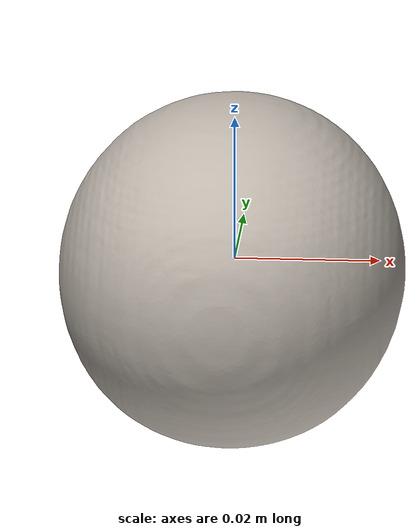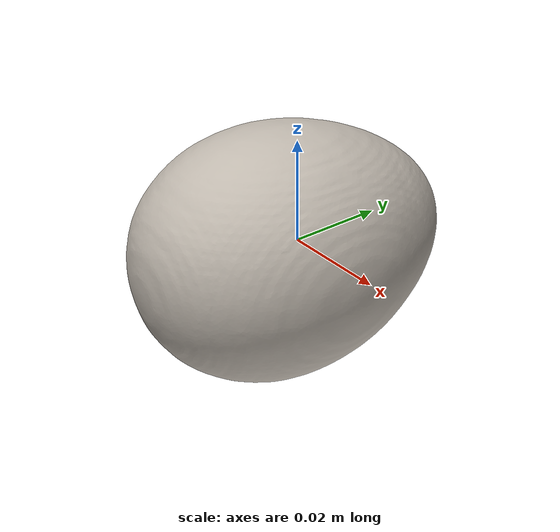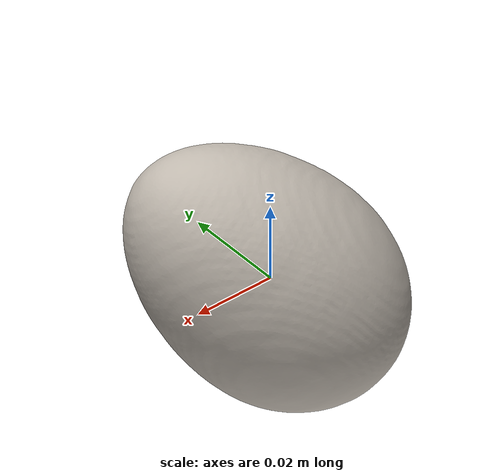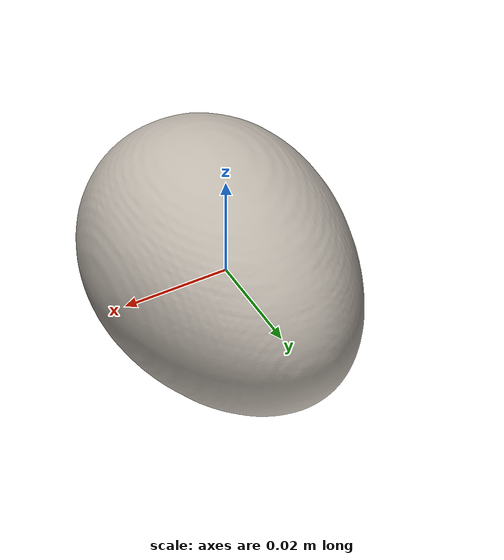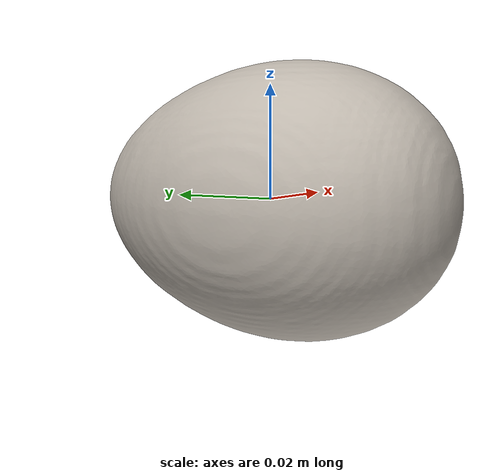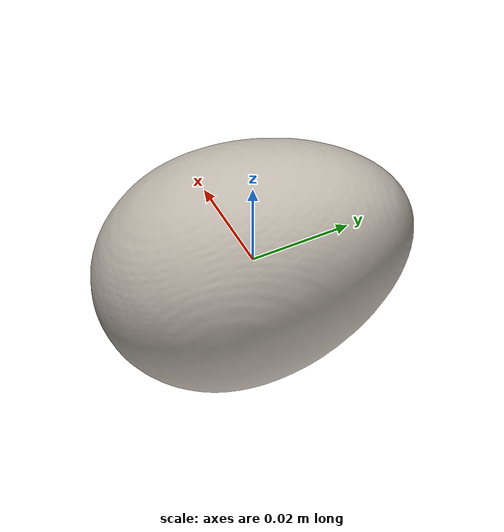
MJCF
<mujoco model="egg_0">
  <asset>
    <texture file="/home/abhiram03/Desktop/mimicgen/robosuite-kitchen/robosuite/models/assets/textures/ceramic.png" name="tex-egg_0" type="2d"/>
    <material name="egg_0" reflectance="0.5" texrepeat="1 1" texture="tex-egg_0" texuniform="false"/>
    <mesh file="visual/model_normalized_0.obj" name="model_normalized_0_vis" scale="0.06499999999999997 0.06499999999999997 0.06499999999999997" refquat="0.7071067811865475 0.7071067811865475 0.0 0.0"/>
    <mesh file="collision/model_normalized_collision_13.obj" name="model_normalized_collision_13._coll" scale="0.06499999999999997 0.06499999999999997 0.06499999999999997" refquat="0.7071067811865475 0.7071067811865475 0.0 0.0"/>
    <mesh file="collision/model_normalized_collision_15.obj" name="model_normalized_collision_15._coll" scale="0.06499999999999997 0.06499999999999997 0.06499999999999997" refquat="0.7071067811865475 0.7071067811865475 0.0 0.0"/>
    <mesh file="collision/model_normalized_collision_10.obj" name="model_normalized_collision_10._coll" scale="0.06499999999999997 0.06499999999999997 0.06499999999999997" refquat="0.7071067811865475 0.7071067811865475 0.0 0.0"/>
    <mesh file="collision/model_normalized_collision_26.obj" name="model_normalized_collision_26._coll" scale="0.06499999999999997 0.06499999999999997 0.06499999999999997" refquat="0.7071067811865475 0.7071067811865475 0.0 0.0"/>
    <mesh file="collision/model_normalized_collision_25.obj" name="model_normalized_collision_25._coll" scale="0.06499999999999997 0.06499999999999997 0.06499999999999997" refquat="0.7071067811865475 0.7071067811865475 0.0 0.0"/>
    <mesh file="collision/model_normalized_collision_5.obj" name="model_normalized_collision_5._coll" scale="0.06499999999999997 0.06499999999999997 0.06499999999999997" refquat="0.7071067811865475 0.7071067811865475 0.0 0.0"/>
    <mesh file="collision/model_normalized_collision_31.obj" name="model_normalized_collision_31._coll" scale="0.06499999999999997 0.06499999999999997 0.06499999999999997" refquat="0.7071067811865475 0.7071067811865475 0.0 0.0"/>
    <mesh file="collision/model_normalized_collision_3.obj" name="model_normalized_collision_3._coll" scale="0.06499999999999997 0.06499999999999997 0.06499999999999997" refquat="0.7071067811865475 0.7071067811865475 0.0 0.0"/>
    <mesh file="collision/model_normalized_collision_14.obj" name="model_normalized_collision_14._coll" scale="0.06499999999999997 0.06499999999999997 0.06499999999999997" refquat="0.7071067811865475 0.7071067811865475 0.0 0.0"/>
    <mesh file="collision/model_normalized_collision_28.obj" name="model_normalized_collision_28._coll" scale="0.06499999999999997 0.06499999999999997 0.06499999999999997" refquat="0.7071067811865475 0.7071067811865475 0.0 0.0"/>
    <mesh file="collision/model_normalized_collision_11.obj" name="model_normalized_collision_11._coll" scale="0.06499999999999997 0.06499999999999997 0.06499999999999997" refquat="0.7071067811865475 0.7071067811865475 0.0 0.0"/>
    <mesh file="collision/model_normalized_collision_29.obj" name="model_normalized_collision_29._coll" scale="0.06499999999999997 0.06499999999999997 0.06499999999999997" refquat="0.7071067811865475 0.7071067811865475 0.0 0.0"/>
    <mesh file="collision/model_normalized_collision_24.obj" name="model_normalized_collision_24._coll" scale="0.06499999999999997 0.06499999999999997 0.06499999999999997" refquat="0.7071067811865475 0.7071067811865475 0.0 0.0"/>
    <mesh file="collision/model_normalized_collision_1.obj" name="model_normalized_collision_1._coll" scale="0.06499999999999997 0.06499999999999997 0.06499999999999997" refquat="0.7071067811865475 0.7071067811865475 0.0 0.0"/>
    <mesh file="collision/model_normalized_collision_0.obj" name="model_normalized_collision_0._coll" scale="0.06499999999999997 0.06499999999999997 0.06499999999999997" refquat="0.7071067811865475 0.7071067811865475 0.0 0.0"/>
    <mesh file="collision/model_normalized_collision_27.obj" name="model_normalized_collision_27._coll" scale="0.06499999999999997 0.06499999999999997 0.06499999999999997" refquat="0.7071067811865475 0.7071067811865475 0.0 0.0"/>
    <mesh file="collision/model_normalized_collision_9.obj" name="model_normalized_collision_9._coll" scale="0.06499999999999997 0.06499999999999997 0.06499999999999997" refquat="0.7071067811865475 0.7071067811865475 0.0 0.0"/>
    <mesh file="collision/model_normalized_collision_19.obj" name="model_normalized_collision_19._coll" scale="0.06499999999999997 0.06499999999999997 0.06499999999999997" refquat="0.7071067811865475 0.7071067811865475 0.0 0.0"/>
    <mesh file="collision/model_normalized_collision_21.obj" name="model_normalized_collision_21._coll" scale="0.06499999999999997 0.06499999999999997 0.06499999999999997" refquat="0.7071067811865475 0.7071067811865475 0.0 0.0"/>
    <mesh file="collision/model_normalized_collision_30.obj" name="model_normalized_collision_30._coll" scale="0.06499999999999997 0.06499999999999997 0.06499999999999997" refquat="0.7071067811865475 0.7071067811865475 0.0 0.0"/>
    <mesh file="collision/model_normalized_collision_20.obj" name="model_normalized_collision_20._coll" scale="0.06499999999999997 0.06499999999999997 0.06499999999999997" refquat="0.7071067811865475 0.7071067811865475 0.0 0.0"/>
    <mesh file="collision/model_normalized_collision_2.obj" name="model_normalized_collision_2._coll" scale="0.06499999999999997 0.06499999999999997 0.06499999999999997" refquat="0.7071067811865475 0.7071067811865475 0.0 0.0"/>
    <mesh file="collision/model_normalized_collision_7.obj" name="model_normalized_collision_7._coll" scale="0.06499999999999997 0.06499999999999997 0.06499999999999997" refquat="0.7071067811865475 0.7071067811865475 0.0 0.0"/>
    <mesh file="collision/model_normalized_collision_22.obj" name="model_normalized_collision_22._coll" scale="0.06499999999999997 0.06499999999999997 0.06499999999999997" refquat="0.7071067811865475 0.7071067811865475 0.0 0.0"/>
    <mesh file="collision/model_normalized_collision_16.obj" name="model_normalized_collision_16._coll" scale="0.06499999999999997 0.06499999999999997 0.06499999999999997" refquat="0.7071067811865475 0.7071067811865475 0.0 0.0"/>
    <mesh file="collision/model_normalized_collision_8.obj" name="model_normalized_collision_8._coll" scale="0.06499999999999997 0.06499999999999997 0.06499999999999997" refquat="0.7071067811865475 0.7071067811865475 0.0 0.0"/>
    <mesh file="collision/model_normalized_collision_6.obj" name="model_normalized_collision_6._coll" scale="0.06499999999999997 0.06499999999999997 0.06499999999999997" refquat="0.7071067811865475 0.7071067811865475 0.0 0.0"/>
    <mesh file="collision/model_normalized_collision_18.obj" name="model_normalized_collision_18._coll" scale="0.06499999999999997 0.06499999999999997 0.06499999999999997" refquat="0.7071067811865475 0.7071067811865475 0.0 0.0"/>
    <mesh file="collision/model_normalized_collision_17.obj" name="model_normalized_collision_17._coll" scale="0.06499999999999997 0.06499999999999997 0.06499999999999997" refquat="0.7071067811865475 0.7071067811865475 0.0 0.0"/>
    <mesh file="collision/model_normalized_collision_12.obj" name="model_normalized_collision_12._coll" scale="0.06499999999999997 0.06499999999999997 0.06499999999999997" refquat="0.7071067811865475 0.7071067811865475 0.0 0.0"/>
    <mesh file="collision/model_normalized_collision_4.obj" name="model_normalized_collision_4._coll" scale="0.06499999999999997 0.06499999999999997 0.06499999999999997" refquat="0.7071067811865475 0.7071067811865475 0.0 0.0"/>
    <mesh file="collision/model_normalized_collision_23.obj" name="model_normalized_collision_23._coll" scale="0.06499999999999997 0.06499999999999997 0.06499999999999997" refquat="0.7071067811865475 0.7071067811865475 0.0 0.0"/>
    <texture type="2d" name="b2f10addfdb7_egg__3d_asset_0_glb_texture_kd" file="visual/b2f10addfdb7_egg__3d_asset_0_glb_texture_kd.png"/>
    <material name="Material_0" texture="b2f10addfdb7_egg__3d_asset_0_glb_texture_kd" specular="0.5" shininess="0.5"/>
  </asset>
  <default>
    <default class="region">
      <geom group="1" conaffinity="0" contype="0" rgba="0 1 0 0"/>
    </default>
  </default>
  <worldbody>
    <body>
      <body name="object">
        <geom solimp="0.998 0.998 0.001" solref="0.001 1" density="100" friction="0.95 0.3 0.1" type="mesh" mesh="model_normalized_0_vis" conaffinity="0" contype="0" group="1" material="Material_0"/>
        <geom solimp="0.998 0.998 0.001" solref="0.001 1" density="100" friction="0.95 0.3 0.1" type="mesh" mesh="model_normalized_collision_13._coll" group="0" rgba="0.8 0.8 0.8 0.0"/>
        <geom solimp="0.998 0.998 0.001" solref="0.001 1" density="100" friction="0.95 0.3 0.1" type="mesh" mesh="model_normalized_collision_15._coll" group="0" rgba="0.8 0.8 0.8 0.0"/>
        <geom solimp="0.998 0.998 0.001" solref="0.001 1" density="100" friction="0.95 0.3 0.1" type="mesh" mesh="model_normalized_collision_10._coll" group="0" rgba="0.8 0.8 0.8 0.0"/>
        <geom solimp="0.998 0.998 0.001" solref="0.001 1" density="100" friction="0.95 0.3 0.1" type="mesh" mesh="model_normalized_collision_26._coll" group="0" rgba="0.8 0.8 0.8 0.0"/>
        <geom solimp="0.998 0.998 0.001" solref="0.001 1" density="100" friction="0.95 0.3 0.1" type="mesh" mesh="model_normalized_collision_25._coll" group="0" rgba="0.8 0.8 0.8 0.0"/>
        <geom solimp="0.998 0.998 0.001" solref="0.001 1" density="100" friction="0.95 0.3 0.1" type="mesh" mesh="model_normalized_collision_5._coll" group="0" rgba="0.8 0.8 0.8 0.0"/>
        <geom solimp="0.998 0.998 0.001" solref="0.001 1" density="100" friction="0.95 0.3 0.1" type="mesh" mesh="model_normalized_collision_31._coll" group="0" rgba="0.8 0.8 0.8 0.0"/>
        <geom solimp="0.998 0.998 0.001" solref="0.001 1" density="100" friction="0.95 0.3 0.1" type="mesh" mesh="model_normalized_collision_3._coll" group="0" rgba="0.8 0.8 0.8 0.0"/>
        <geom solimp="0.998 0.998 0.001" solref="0.001 1" density="100" friction="0.95 0.3 0.1" type="mesh" mesh="model_normalized_collision_14._coll" group="0" rgba="0.8 0.8 0.8 0.0"/>
        <geom solimp="0.998 0.998 0.001" solref="0.001 1" density="100" friction="0.95 0.3 0.1" type="mesh" mesh="model_normalized_collision_28._coll" group="0" rgba="0.8 0.8 0.8 0.0"/>
        <geom solimp="0.998 0.998 0.001" solref="0.001 1" density="100" friction="0.95 0.3 0.1" type="mesh" mesh="model_normalized_collision_11._coll" group="0" rgba="0.8 0.8 0.8 0.0"/>
        <geom solimp="0.998 0.998 0.001" solref="0.001 1" density="100" friction="0.95 0.3 0.1" type="mesh" mesh="model_normalized_collision_29._coll" group="0" rgba="0.8 0.8 0.8 0.0"/>
        <geom solimp="0.998 0.998 0.001" solref="0.001 1" density="100" friction="0.95 0.3 0.1" type="mesh" mesh="model_normalized_collision_24._coll" group="0" rgba="0.8 0.8 0.8 0.0"/>
        <geom solimp="0.998 0.998 0.001" solref="0.001 1" density="100" friction="0.95 0.3 0.1" type="mesh" mesh="model_normalized_collision_1._coll" group="0" rgba="0.8 0.8 0.8 0.0"/>
        <geom solimp="0.998 0.998 0.001" solref="0.001 1" density="100" friction="0.95 0.3 0.1" type="mesh" mesh="model_normalized_collision_0._coll" group="0" rgba="0.8 0.8 0.8 0.0"/>
        <geom solimp="0.998 0.998 0.001" solref="0.001 1" density="100" friction="0.95 0.3 0.1" type="mesh" mesh="model_normalized_collision_27._coll" group="0" rgba="0.8 0.8 0.8 0.0"/>
        <geom solimp="0.998 0.998 0.001" solref="0.001 1" density="100" friction="0.95 0.3 0.1" type="mesh" mesh="model_normalized_collision_9._coll" group="0" rgba="0.8 0.8 0.8 0.0"/>
        <geom solimp="0.998 0.998 0.001" solref="0.001 1" density="100" friction="0.95 0.3 0.1" type="mesh" mesh="model_normalized_collision_19._coll" group="0" rgba="0.8 0.8 0.8 0.0"/>
        <geom solimp="0.998 0.998 0.001" solref="0.001 1" density="100" friction="0.95 0.3 0.1" type="mesh" mesh="model_normalized_collision_21._coll" group="0" rgba="0.8 0.8 0.8 0.0"/>
        <geom solimp="0.998 0.998 0.001" solref="0.001 1" density="100" friction="0.95 0.3 0.1" type="mesh" mesh="model_normalized_collision_30._coll" group="0" rgba="0.8 0.8 0.8 0.0"/>
        <geom solimp="0.998 0.998 0.001" solref="0.001 1" density="100" friction="0.95 0.3 0.1" type="mesh" mesh="model_normalized_collision_20._coll" group="0" rgba="0.8 0.8 0.8 0.0"/>
        <geom solimp="0.998 0.998 0.001" solref="0.001 1" density="100" friction="0.95 0.3 0.1" type="mesh" mesh="model_normalized_collision_2._coll" group="0" rgba="0.8 0.8 0.8 0.0"/>
        <geom solimp="0.998 0.998 0.001" solref="0.001 1" density="100" friction="0.95 0.3 0.1" type="mesh" mesh="model_normalized_collision_7._coll" group="0" rgba="0.8 0.8 0.8 0.0"/>
        <geom solimp="0.998 0.998 0.001" solref="0.001 1" density="100" friction="0.95 0.3 0.1" type="mesh" mesh="model_normalized_collision_22._coll" group="0" rgba="0.8 0.8 0.8 0.0"/>
        <geom solimp="0.998 0.998 0.001" solref="0.001 1" density="100" friction="0.95 0.3 0.1" type="mesh" mesh="model_normalized_collision_16._coll" group="0" rgba="0.8 0.8 0.8 0.0"/>
        <geom solimp="0.998 0.998 0.001" solref="0.001 1" density="100" friction="0.95 0.3 0.1" type="mesh" mesh="model_normalized_collision_8._coll" group="0" rgba="0.8 0.8 0.8 0.0"/>
        <geom solimp="0.998 0.998 0.001" solref="0.001 1" density="100" friction="0.95 0.3 0.1" type="mesh" mesh="model_normalized_collision_6._coll" group="0" rgba="0.8 0.8 0.8 0.0"/>
        <geom solimp="0.998 0.998 0.001" solref="0.001 1" density="100" friction="0.95 0.3 0.1" type="mesh" mesh="model_normalized_collision_18._coll" group="0" rgba="0.8 0.8 0.8 0.0"/>
        <geom solimp="0.998 0.998 0.001" solref="0.001 1" density="100" friction="0.95 0.3 0.1" type="mesh" mesh="model_normalized_collision_17._coll" group="0" rgba="0.8 0.8 0.8 0.0"/>
        <geom solimp="0.998 0.998 0.001" solref="0.001 1" density="100" friction="0.95 0.3 0.1" type="mesh" mesh="model_normalized_collision_12._coll" group="0" rgba="0.8 0.8 0.8 0.0"/>
        <geom solimp="0.998 0.998 0.001" solref="0.001 1" density="100" friction="0.95 0.3 0.1" type="mesh" mesh="model_normalized_collision_4._coll" group="0" rgba="0.8 0.8 0.8 0.0"/>
        <geom solimp="0.998 0.998 0.001" solref="0.001 1" density="100" friction="0.95 0.3 0.1" type="mesh" mesh="model_normalized_collision_23._coll" group="0" rgba="0.8 0.8 0.8 0.0"/>
        <geom class="region" name="reg_bbox" type="box" pos="0.00011286307500000143 -3.2500000163304666e-10 0.00012677340000000203" size="0.024241651199999992 0.032992423749999986 0.024128787799999992"/>
      </body>
    </body>
  </worldbody>
</mujoco>
